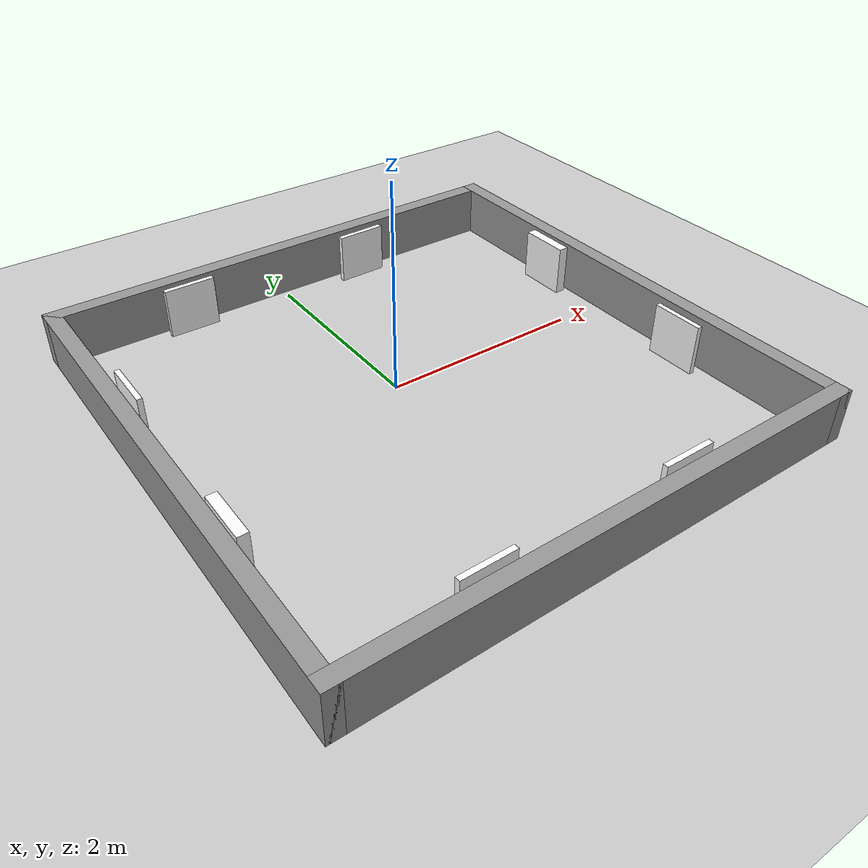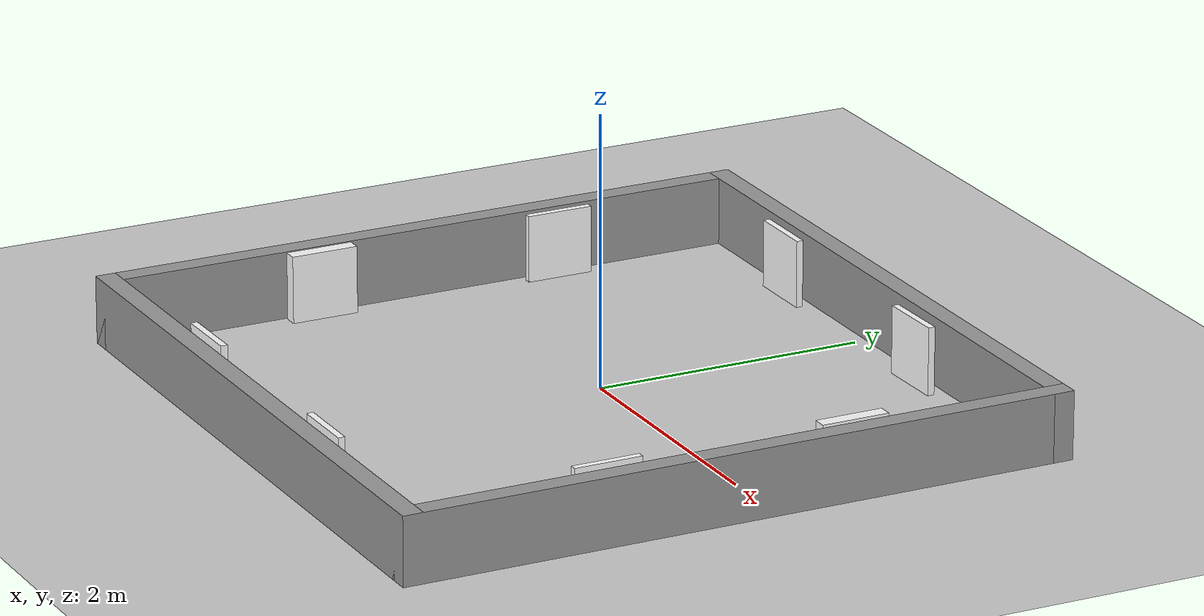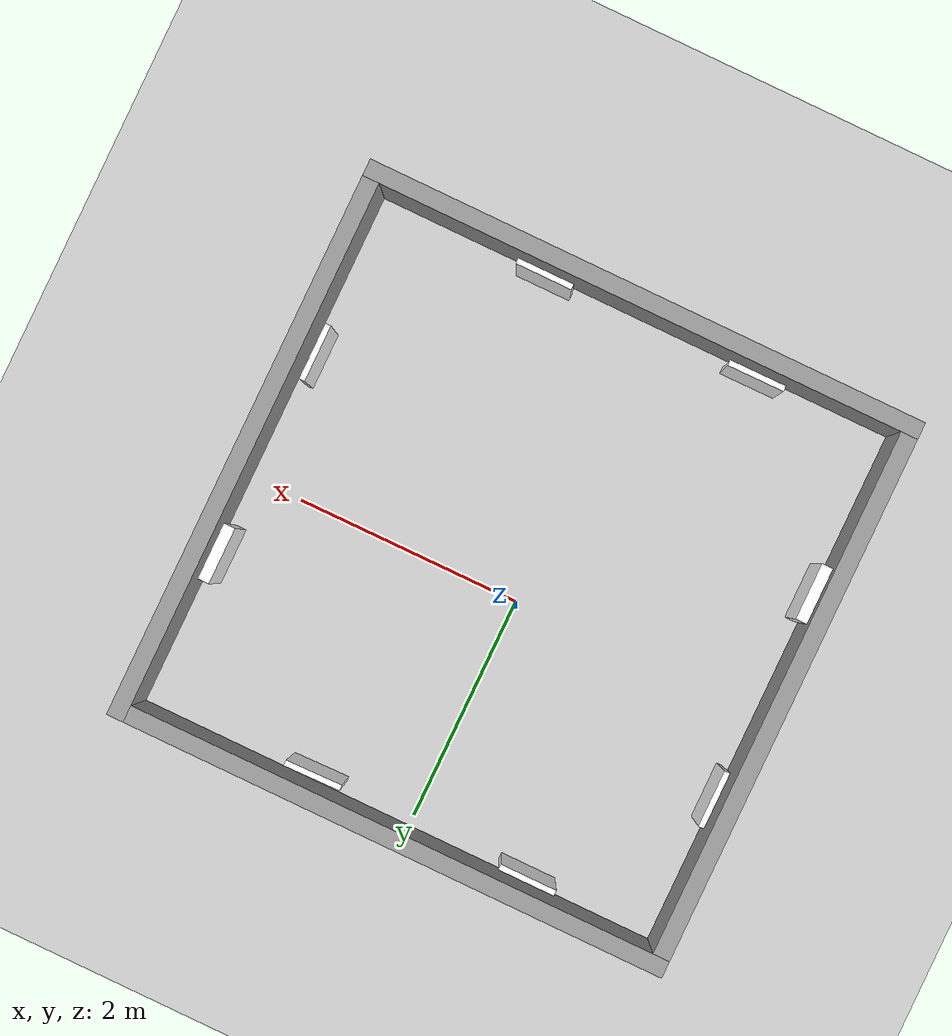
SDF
<sdf version="1.7">
 <world name="default">
  <scene><ambient>0.4 0.4 0.4 1</ambient><background>0.7 0.7 0.7 1</background><shadows>1</shadows></scene>
  <light name="sun" type="directional">
   <pose>0 0 10 0 -0 0</pose>
   <diffuse>0.8 0.8 0.8 1</diffuse>
   <specular>0.2 0.2 0.2 1</specular>
   <attenuation>
    <range>1000</range>
    <constant>0.9</constant>
    <linear>0.01</linear>
    <quadratic>0.001</quadratic>
   </attenuation>
   <direction>-0.5 0.1 -0.9</direction>
   <spot><inner_angle>0</inner_angle><outer_angle>0</outer_angle><falloff>0</falloff></spot>
  </light>
  <model name="ground_plane">
   <static>1</static>
   <link name="link">
    <collision name="collision">
     <geometry><plane><normal>0 0 1</normal><size>100 100</size></plane></geometry>
     <surface>
      <contact><collide_bitmask>65535</collide_bitmask></contact>
      <friction><ode><mu>100</mu><mu2>50</mu2></ode></friction>
     </surface>
    </collision>
    <visual name="visual">
     <cast_shadows>0</cast_shadows>
     <geometry><plane><normal>0 0 1</normal><size>100 100</size></plane></geometry>
     <material>
      <script><uri>file://media/materials/scripts/gazebo.material</uri><name>Gazebo/Grey</name></script>
     </material>
    </visual>
   </link>
  </model>
  <physics type="ode">
   <real_time_update_rate>1000</real_time_update_rate>
   <max_step_size>0.001</max_step_size>
   <real_time_factor>1</real_time_factor>
   <ode>
    <solver>
     <type>quick</type>
     <iters>150</iters>
     <precon_iters>0</precon_iters>
     <sor>1.4</sor>
     <use_dynamic_moi_rescaling>1</use_dynamic_moi_rescaling>
    </solver>
    <constraints>
     <cfm>1e-05</cfm>
     <erp>0.2</erp>
     <contact_max_correcting_vel>2000</contact_max_correcting_vel>
     <contact_surface_layer>0.01</contact_surface_layer>
    </constraints>
   </ode>
  </physics>
  <gravity>0 0 -9.8</gravity>
  <magnetic_field>6e-06 2.3e-05 -4.2e-05</magnetic_field>
  <atmosphere type="adiabatic"/>
  <spherical_coordinates>
   <surface_model>EARTH_WGS84</surface_model>
   <latitude_deg>0</latitude_deg>
   <longitude_deg>0</longitude_deg>
   <elevation>0</elevation>
   <heading_deg>0</heading_deg>
  </spherical_coordinates>
  <model name="square">
   <pose>0.117632 -0.257328 0 0 -0 0</pose>
   <link name="Wall_5">
    <collision name="Wall_5_Collision">
     <geometry><box><size>5 0.15 0.5</size></box></geometry>
     <pose>0 0 0.25 0 -0 0</pose>
    </collision>
    <visual name="Wall_5_Visual">
     <pose>0 0 0.25 0 -0 0</pose>
     <geometry><box><size>5 0.15 0.5</size></box></geometry>
     <material>
      <script><uri>file://media/materials/scripts/gazebo.material</uri><name>Gazebo/Grey</name></script>
      <ambient>0 0 0 1</ambient>
     </material>
     <meta><layer>0</layer></meta>
    </visual>
    <pose>0 -2.425 0 0 -0 0</pose>
   </link>
   <link name="Wall_6">
    <collision name="Wall_6_Collision">
     <geometry><box><size>5 0.15 0.5</size></box></geometry>
     <pose>0 0 0.25 0 -0 0</pose>
    </collision>
    <visual name="Wall_6_Visual">
     <pose>0 0 0.25 0 -0 0</pose>
     <geometry><box><size>5 0.15 0.5</size></box></geometry>
     <material>
      <script><uri>file://media/materials/scripts/gazebo.material</uri><name>Gazebo/Grey</name></script>
      <ambient>0 0 0 1</ambient>
     </material>
     <meta><layer>0</layer></meta>
    </visual>
    <pose>2.425 0 0 0 -0 1.5708</pose>
   </link>
   <link name="Wall_7">
    <collision name="Wall_7_Collision">
     <geometry><box><size>5 0.15 0.5</size></box></geometry>
     <pose>0 0 0.25 0 -0 0</pose>
    </collision>
    <visual name="Wall_7_Visual">
     <pose>0 0 0.25 0 -0 0</pose>
     <geometry><box><size>5 0.15 0.5</size></box></geometry>
     <material>
      <script><uri>file://media/materials/scripts/gazebo.material</uri><name>Gazebo/Grey</name></script>
      <ambient>0 0 0 1</ambient>
     </material>
     <meta><layer>0</layer></meta>
    </visual>
    <pose>0 2.425 0 0 -0 3.14159</pose>
   </link>
   <link name="Wall_8">
    <collision name="Wall_8_Collision">
     <geometry><box><size>5 0.15 0.5</size></box></geometry>
     <pose>0 0 0.25 0 -0 0</pose>
    </collision>
    <visual name="Wall_8_Visual">
     <pose>0 0 0.25 0 -0 0</pose>
     <geometry><box><size>5 0.15 0.5</size></box></geometry>
     <material>
      <script><uri>file://media/materials/scripts/gazebo.material</uri><name>Gazebo/Grey</name></script>
      <ambient>0 0 0 1</ambient>
     </material>
     <meta><layer>0</layer></meta>
    </visual>
    <pose>-2.425 0 0 0 -0 -1.5708</pose>
   </link>
   <static>1</static>
  </model>
  <model name="a_wall">
   <pose>2.3698 0.828059 0 0 -0 0</pose>
   <link name="Wall_0">
    <collision name="Wall_0_Collision">
     <geometry><box><size>0.1 0.5 0.5</size></box></geometry>
     <pose>0 0 0.25 0 -0 0</pose>
    </collision>
    <visual name="Wall_0_Visual">
     <pose>0 0 0.25 0 -0 0</pose>
     <geometry><box><size>0.1 0.5 0.5</size></box></geometry>
     <material>
      <script>
       <uri>../building_editor_models/a_wall/materials/scripts</uri>
       <uri>../building_editor_models/a_wall/materials/textures</uri>
       <name>wallTexture</name>
      </script>
      <ambient>1 1 1 1</ambient>
     </material>
     <meta><layer>0</layer></meta>
    </visual>
    <pose>0 -0.15 0 0 -0 0</pose>
   </link>
   <static>1</static>
  </model>
  <model name="noPark">
   <pose>2.34814 -0.993745 0 0 -0 0</pose>
   <link name="Wall_0">
    <collision name="Wall_0_Collision">
     <geometry><box><size>0.05 0.5 0.5</size></box></geometry>
     <pose>0 0 0.25 0 -0 0</pose>
    </collision>
    <visual name="Wall_0_Visual">
     <pose>0 0 0.25 0 -0 0</pose>
     <geometry><box><size>0.05 0.5 0.5</size></box></geometry>
     <material>
      <script>
       <uri>../building_editor_models/noPark/materials/scripts</uri>
       <uri>../building_editor_models/noPark/materials/textures</uri>
       <name>noParkTexture</name>
      </script>
      <ambient>1 1 1 1</ambient>
     </material>
     <meta><layer>0</layer></meta>
    </visual>
    <pose>0 -0.15 0 0 -0 0</pose>
   </link>
   <static>1</static>
  </model>
  <model name="noPark_0">
   <pose>-0.82893 -2.51379 0 0 0 -1.56596</pose>
   <link name="Wall_0">
    <collision name="Wall_0_Collision">
     <geometry><box><size>0.05 0.5 0.5</size></box></geometry>
     <pose>0 0 0.25 0 -0 0</pose>
    </collision>
    <visual name="Wall_0_Visual">
     <pose>0 0 0.25 0 -0 0</pose>
     <geometry><box><size>0.05 0.5 0.5</size></box></geometry>
     <material>
      <script>
       <uri>../building_editor_models/noPark/materials/scripts</uri>
       <uri>../building_editor_models/noPark/materials/textures</uri>
       <name>noParkTexture</name>
      </script>
      <ambient>1 1 1 1</ambient>
     </material>
     <meta><layer>0</layer></meta>
    </visual>
    <pose>0 -0.15 0 0 -0 0</pose>
   </link>
   <static>1</static>
  </model>
  <model name="FlipedWall">
   <pose>0.933518 -2.37146 0 0 -0 0</pose>
   <link name="Wall_0">
    <collision name="Wall_0_Collision">
     <geometry><box><size>0.05 0.5 0.5</size></box></geometry>
     <pose>0 0 0.25 0 -0 1.5708</pose>
    </collision>
    <visual name="Wall_0_Visual">
     <pose>0 0 0.25 0 -0 1.5708</pose>
     <geometry><box><size>0.05 0.5 0.5</size></box></geometry>
     <material>
      <script>
       <uri>../building_editor_models/a_wall/materials/scripts</uri>
       <uri>../building_editor_models/a_wall/materials/textures</uri>
       <name>wallTexture</name>
      </script>
      <ambient>1 1 1 1</ambient>
     </material>
     <meta><layer>0</layer></meta>
    </visual>
    <pose>0 -0.15 0 0 -0 0</pose>
   </link>
   <static>1</static>
  </model>
  <model name="a_wall_1">
   <pose>-2.16286 -0.963419 0 0 -0 0</pose>
   <link name="Wall_0">
    <collision name="Wall_0_Collision">
     <geometry><box><size>0.1 0.5 0.5</size></box></geometry>
     <pose>0 0 0.25 0 -0 0</pose>
    </collision>
    <visual name="Wall_0_Visual">
     <pose>0 0 0.25 0 -0 0</pose>
     <geometry><box><size>0.1 0.5 0.5</size></box></geometry>
     <material>
      <script>
       <uri>../building_editor_models/a_wall/materials/scripts</uri>
       <uri>../building_editor_models/a_wall/materials/textures</uri>
       <name>wallTexture</name>
      </script>
      <ambient>1 1 1 1</ambient>
     </material>
     <meta><layer>0</layer></meta>
    </visual>
    <pose>0 -0.15 0 0 -0 0</pose>
   </link>
   <static>1</static>
  </model>
  <model name="noPark_2">
   <pose>-2.14573 0.898169 0 0 -0 0</pose>
   <link name="Wall_0">
    <collision name="Wall_0_Collision">
     <geometry><box><size>0.05 0.5 0.5</size></box></geometry>
     <pose>0 0 0.25 0 -0 0</pose>
    </collision>
    <visual name="Wall_0_Visual">
     <pose>0 0 0.25 0 -0 0</pose>
     <geometry><box><size>0.05 0.5 0.5</size></box></geometry>
     <material>
      <script>
       <uri>../building_editor_models/noPark/materials/scripts</uri>
       <uri>../building_editor_models/noPark/materials/textures</uri>
       <name>noParkTexture</name>
      </script>
      <ambient>1 1 1 1</ambient>
     </material>
     <meta><layer>0</layer></meta>
    </visual>
    <pose>0 -0.15 0 0 -0 0</pose>
   </link>
   <static>1</static>
  </model>
  <model name="FlipedWall_0">
   <pose>-1.05272 2.13962 0 0 -0 0</pose>
   <link name="Wall_0">
    <collision name="Wall_0_Collision">
     <geometry><box><size>0.05 0.5 0.5</size></box></geometry>
     <pose>0 0 0.25 0 -0 1.5708</pose>
    </collision>
    <visual name="Wall_0_Visual">
     <pose>0 0 0.25 0 -0 1.5708</pose>
     <geometry><box><size>0.05 0.5 0.5</size></box></geometry>
     <material>
      <script>
       <uri>../building_editor_models/a_wall/materials/scripts</uri>
       <uri>../building_editor_models/a_wall/materials/textures</uri>
       <name>wallTexture</name>
      </script>
      <ambient>1 1 1 1</ambient>
     </material>
     <meta><layer>0</layer></meta>
    </visual>
    <pose>0 -0.15 0 0 -0 0</pose>
   </link>
   <static>1</static>
  </model>
  <model name="noPark_3">
   <pose>0.737227 1.96703 0 0 -0 1.59124</pose>
   <link name="Wall_0">
    <collision name="Wall_0_Collision">
     <geometry><box><size>0.05 0.5 0.5</size></box></geometry>
     <pose>0 0 0.25 0 -0 0</pose>
    </collision>
    <visual name="Wall_0_Visual">
     <pose>0 0 0.25 0 -0 0</pose>
     <geometry><box><size>0.05 0.5 0.5</size></box></geometry>
     <material>
      <script>
       <uri>../building_editor_models/noPark/materials/scripts</uri>
       <uri>../building_editor_models/noPark/materials/textures</uri>
       <name>noParkTexture</name>
      </script>
      <ambient>1 1 1 1</ambient>
     </material>
     <meta><layer>0</layer></meta>
    </visual>
    <pose>0 -0.15 0 0 -0 0</pose>
   </link>
   <static>1</static>
  </model>
 </world>
</sdf>
